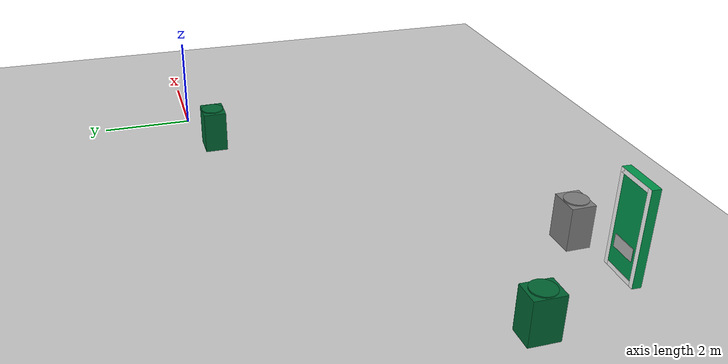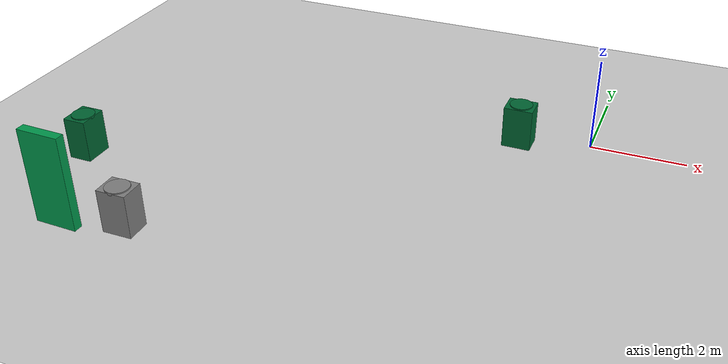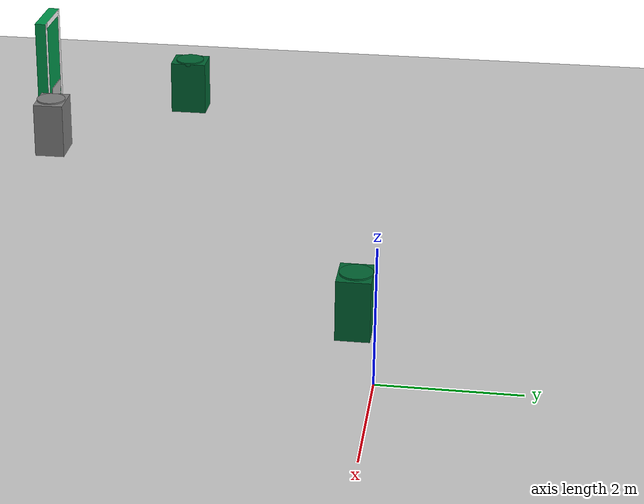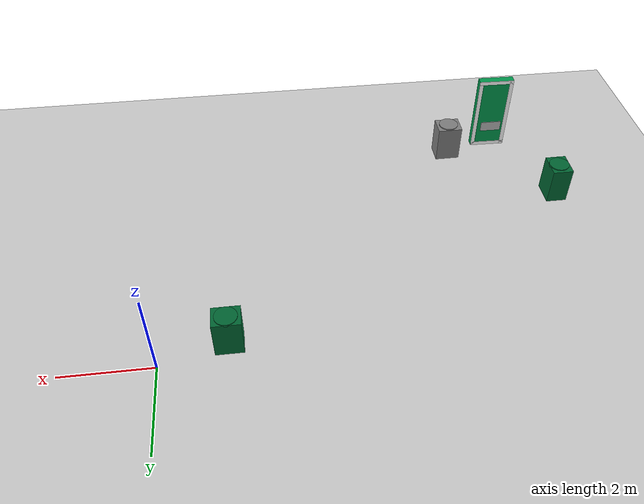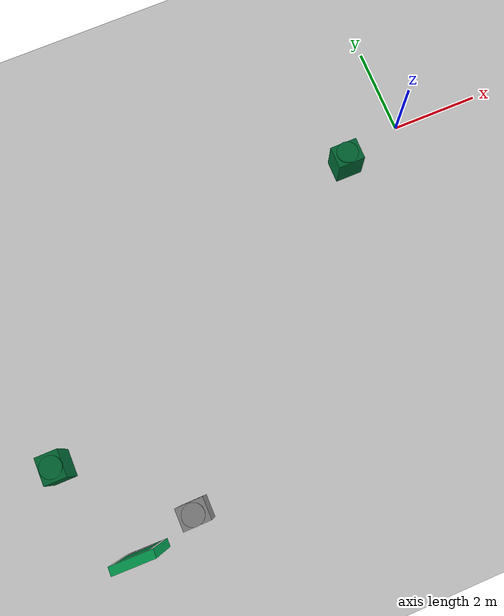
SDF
<sdf version="1.7">
 <world name="default">
  <model name="ground_plane">
   <static>1</static>
   <link name="link">
    <collision name="collision">
     <geometry><plane><normal>0 0 1</normal><size>100 100</size></plane></geometry>
     <surface><friction><ode><mu>100</mu><mu2>50</mu2></ode></friction></surface>
    </collision>
    <visual name="visual">
     <cast_shadows>0</cast_shadows>
     <geometry><plane><normal>0 0 1</normal><size>100 100</size></plane></geometry>
     <material>
      <script><uri>file://media/materials/scripts/gazebo.material</uri><name>Gazebo/Grey</name></script>
     </material>
    </visual>
   </link>
  </model>
  <model name="fire_exit_green">
   <link name="link_1">
    <pose>0 0 0.993 0 -0 0</pose>
    <visual name="visual">
     <geometry><box><size>0.891572 0.186765 1.98613</size></box></geometry>
     <material>
      <ambient>0 0.6 0.3 1</ambient>
      <diffuse>0 0.6 0.3 1</diffuse>
      <specular>0.2 0.2 0.2 1</specular>
     </material>
    </visual>
    <visual name="border_left">
     <pose>0.395 0.094 0 0 -0 0</pose>
     <geometry><box><size>0.1 0.002 1.986</size></box></geometry>
     <material><ambient>1 1 1 1</ambient><diffuse>1 1 1 1</diffuse></material>
    </visual>
    <visual name="border_right">
     <pose>-0.395 0.094 0 0 -0 0</pose>
     <geometry><box><size>0.1 0.002 1.986</size></box></geometry>
     <material><ambient>1 1 1 1</ambient><diffuse>1 1 1 1</diffuse></material>
    </visual>
    <visual name="border_top">
     <pose>0 0.094 0.943 0 -0 0</pose>
     <geometry><box><size>0.891 0.002 0.1</size></box></geometry>
     <material><ambient>1 1 1 1</ambient><diffuse>1 1 1 1</diffuse></material>
    </visual>
    <visual name="border_bottom">
     <pose>0 0.094 -0.943 0 -0 0</pose>
     <geometry><box><size>0.891 0.002 0.1</size></box></geometry>
     <material><ambient>1 1 1 1</ambient><diffuse>1 1 1 1</diffuse></material>
    </visual>
    <collision name="collision"><geometry><box><size>0.891572 0.186765 1.98613</size></box></geometry></collision>
    <inertial>
     <inertia><ixx>1</ixx><ixy>0</ixy><ixz>0</ixz><iyy>1</iyy><iyz>0</iyz><izz>1</izz></inertia>
     <mass>1</mass>
    </inertial>
   </link>
   <static>0</static>
   <pose>-8.66806 -6.58362 0.005065 0 0 -0.021994</pose>
  </model>
  <model name="poster">
   <static>1</static>
   <link name="link_0">
    <visual name="visual">
     <geometry><box><size>0.01 0.537989 0.266526</size></box></geometry>
     <material>
      <script>
       <uri>model://poster/materials/scripts</uri>
       <uri>model://poster/materials/textures</uri>
       <name>FireExit/Label</name>
      </script>
     </material>
    </visual>
    <collision name="collision"><geometry><box><size>0.01 0.537989 0.266526</size></box></geometry></collision>
   </link>
   <pose>-8.68921 -6.47973 0.606253 0 -0 1.55876</pose>
  </model>
  <model name="green_Bin_1">
   <static>1</static>
   <link name="link_2">
    <inertial>
     <mass>0.277562</mass>
     <inertia>
      <ixx>0.0278838</ixx>
      <ixy>0</ixy>
      <ixz>0</ixz>
      <iyy>0.0249412</iyy>
      <iyz>0</iyz>
      <izz>0.0143905</izz>
     </inertia>
    </inertial>
    <pose>-0.005587 0.000331 -0.225701 0 -0 0</pose>
    <visual name="visual">
     <geometry><box><size>0.49746 0.612116 0.9115</size></box></geometry>
     <material>
      <ambient>0 0.4 0.2 1</ambient>
      <diffuse>0 0.4 0.2 1</diffuse>
      <specular>0.1 0.1 0.1 1</specular>
      <lighting>1</lighting>
     </material>
    </visual>
    <collision name="collision"><geometry><box><size>0.49746 0.612116 0.9115</size></box></geometry></collision>
   </link>
   <link name="link_3">
    <inertial>
     <mass>0.0139645</mass>
     <inertia>
      <ixx>0.000210199</ixx>
      <ixy>0</ixy>
      <ixz>0</ixz>
      <iyy>0.000210199</iyy>
      <iyz>0</iyz>
      <izz>0.000412262</izz>
     </inertia>
    </inertial>
    <pose>0.005589 -0.000325 0.225701 0 -0 0</pose>
    <visual name="visual">
     <geometry><cylinder><radius>0.24299</radius><length>0.0591249</length></cylinder></geometry>
     <material>
      <ambient>0 0.4 0.2 1</ambient>
      <diffuse>0 0.4 0.2 1</diffuse>
      <specular>0.1 0.1 0.1 1</specular>
      <lighting>1</lighting>
     </material>
    </visual>
    <collision name="collision">
     <geometry><cylinder><radius>0.24299</radius><length>0.059125</length></cylinder></geometry>
    </collision>
   </link>
   <static>0</static>
   <pose>-9.769 -4.26993 0.689259 0 -0 0</pose>
  </model>
  <model name="grey_Bin_1">
   <static>1</static>
   <link name="link_2">
    <inertial>
     <mass>0.277562</mass>
     <inertia>
      <ixx>0.0278838</ixx>
      <ixy>0</ixy>
      <ixz>0</ixz>
      <iyy>0.0249412</iyy>
      <iyz>0</iyz>
      <izz>0.0143905</izz>
     </inertia>
    </inertial>
    <pose>-0.005587 0.000331 -0.225701 0 -0 0</pose>
    <visual name="visual">
     <geometry><box><size>0.49746 0.612116 0.9115</size></box></geometry>
     <material>
      <ambient>0.5 0.5 0.5 1</ambient>
      <diffuse>0.5 0.5 0.5 1</diffuse>
      <specular>0.2 0.2 0.2 1</specular>
      <lighting>1</lighting>
     </material>
    </visual>
    <collision name="collision"><geometry><box><size>0.49746 0.612116 0.9115</size></box></geometry></collision>
   </link>
   <link name="link_3">
    <inertial>
     <mass>0.0139645</mass>
     <inertia>
      <ixx>0.000210199</ixx>
      <ixy>0</ixy>
      <ixz>0</ixz>
      <iyy>0.000210199</iyy>
      <iyz>0</iyz>
      <izz>0.000412262</izz>
     </inertia>
    </inertial>
    <pose>0.005589 -0.000325 0.225701 0 -0 0</pose>
    <visual name="visual">
     <geometry><cylinder><radius>0.24299</radius><length>0.0591249</length></cylinder></geometry>
     <material>
      <ambient>0.5 0.5 0.5 1</ambient>
      <diffuse>0.5 0.5 0.5 1</diffuse>
      <specular>0.2 0.2 0.2 1</specular>
      <lighting>1</lighting>
     </material>
    </visual>
    <collision name="collision">
     <geometry><cylinder><radius>0.24299</radius><length>0.059125</length></cylinder></geometry>
    </collision>
   </link>
   <static>0</static>
   <pose>-7.43985 -6.24526 0.689001 0 0 -1.56197</pose>
  </model>
  <model name="green_Bin_2">
   <static>1</static>
   <link name="link_2">
    <inertial>
     <mass>0.277562</mass>
     <inertia>
      <ixx>0.0278838</ixx>
      <ixy>0</ixy>
      <ixz>0</ixz>
      <iyy>0.0249412</iyy>
      <iyz>0</iyz>
      <izz>0.0143905</izz>
     </inertia>
    </inertial>
    <pose>-0.005587 0.000331 -0.225701 0 -0 0</pose>
    <visual name="visual">
     <geometry><box><size>0.49746 0.612116 0.9115</size></box></geometry>
     <material>
      <ambient>0 0.4 0.2 1</ambient>
      <diffuse>0 0.4 0.2 1</diffuse>
      <specular>0.1 0.1 0.1 1</specular>
      <lighting>1</lighting>
     </material>
    </visual>
    <collision name="collision"><geometry><box><size>0.49746 0.612116 0.9115</size></box></geometry></collision>
   </link>
   <link name="link_3">
    <inertial>
     <mass>0.0139645</mass>
     <inertia>
      <ixx>0.000210199</ixx>
      <ixy>0</ixy>
      <ixz>0</ixz>
      <iyy>0.000210199</iyy>
      <iyz>0</iyz>
      <izz>0.000412262</izz>
     </inertia>
    </inertial>
    <pose>0.005589 -0.000325 0.225701 0 -0 0</pose>
    <visual name="visual">
     <geometry><cylinder><radius>0.24299</radius><length>0.0591249</length></cylinder></geometry>
     <material>
      <ambient>0 0.4 0.2 1</ambient>
      <diffuse>0 0.4 0.2 1</diffuse>
      <specular>0.1 0.1 0.1 1</specular>
      <lighting>1</lighting>
     </material>
    </visual>
    <collision name="collision">
     <geometry><cylinder><radius>0.24299</radius><length>0.059125</length></cylinder></geometry>
    </collision>
   </link>
   <static>0</static>
   <pose>-1.4851 -0.410035 0.679789 0 -0 1.56994</pose>
  </model>
 </world>
</sdf>
